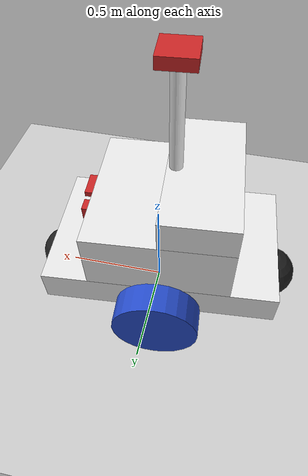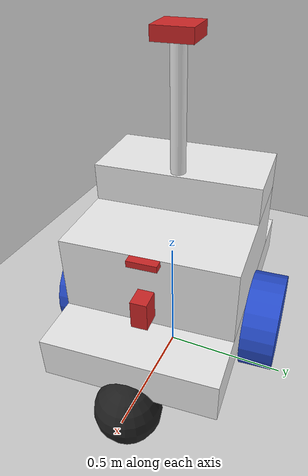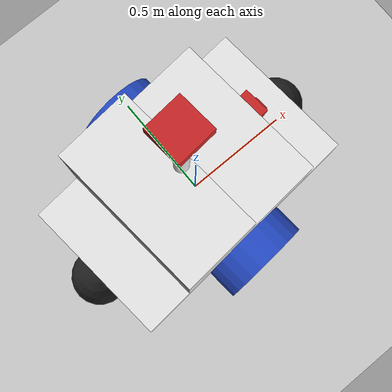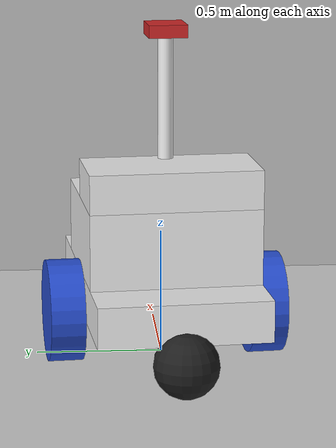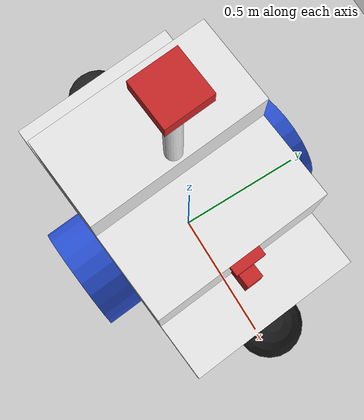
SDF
<sdf version="1.7">
 <world name="default">
  <light name="sun" type="directional">
   <pose>0 0 10 0 -0 0</pose>
   <diffuse>0.8 0.8 0.8 1</diffuse>
   <specular>0.2 0.2 0.2 1</specular>
   <attenuation>
    <range>1000</range>
    <constant>0.9</constant>
    <linear>0.01</linear>
    <quadratic>0.001</quadratic>
   </attenuation>
   <direction>-0.5 0.1 -0.9</direction>
   <spot><inner_angle>0</inner_angle><outer_angle>0</outer_angle><falloff>0</falloff></spot>
  </light>
  <model name="ground_plane">
   <static>1</static>
   <link name="link">
    <collision name="collision">
     <geometry><plane><normal>0 0 1</normal><size>100 100</size></plane></geometry>
     <surface>
      <contact><collide_bitmask>65535</collide_bitmask></contact>
      <friction><ode><mu>100</mu><mu2>50</mu2></ode></friction>
     </surface>
    </collision>
    <visual name="visual">
     <cast_shadows>0</cast_shadows>
     <geometry><plane><normal>0 0 1</normal><size>100 100</size></plane></geometry>
     <material>
      <script><uri>file://media/materials/scripts/gazebo.material</uri><name>Gazebo/Grey</name></script>
     </material>
    </visual>
   </link>
  </model>
  <gravity>0 0 -9.8</gravity>
  <magnetic_field>6e-06 2.3e-05 -4.2e-05</magnetic_field>
  <atmosphere type="adiabatic"/>
  <physics type="ode">
   <max_step_size>0.001</max_step_size>
   <real_time_factor>1</real_time_factor>
   <real_time_update_rate>1000</real_time_update_rate>
  </physics>
  <scene><ambient>0.4 0.4 0.4 1</ambient><background>0.7 0.7 0.7 1</background><shadows>1</shadows></scene>
  <spherical_coordinates>
   <surface_model>EARTH_WGS84</surface_model>
   <latitude_deg>0</latitude_deg>
   <longitude_deg>0</longitude_deg>
   <elevation>0</elevation>
   <heading_deg>0</heading_deg>
  </spherical_coordinates>
  <audio><device>default</device></audio>
  <model name="my_bot">
   <link name="base_link">
    <inertial>
     <pose>-0.02405 0 0.187431 0 -0 0</pose>
     <mass>51.42</mass>
     <inertia>
      <ixx>3.938</ixx>
      <ixy>0</ixy>
      <ixz>0.461429</ixz>
      <iyy>7.18423</iyy>
      <iyz>0</iyz>
      <izz>6.68355</izz>
     </inertia>
    </inertial>
    <collision name="base_link_fixed_joint_lump__chassis_collision">
     <pose>0 0 0.08135 0 -0 0</pose>
     <geometry><box><size>1.099 0.6689 0.1627</size></box></geometry>
    </collision>
    <collision name="base_link_fixed_joint_lump__bottom_frame_collision_1">
     <pose>0 0 0.31195 0 -0 0</pose>
     <geometry><box><size>0.6596 0.6689 0.2985</size></box></geometry>
    </collision>
    <collision name="base_link_fixed_joint_lump__camera_link_collision_2">
     <pose>0.34735 0 0.4485 0 -0 0</pose>
     <geometry><box><size>0.0351 0.1143 0.0254</size></box></geometry>
    </collision>
    <collision name="base_link_fixed_joint_lump__imu_link_collision_3">
     <pose>0.3282 0 0.4485 0 -0 0</pose>
     <geometry><box><size>0.01 0.01 0.007</size></box></geometry>
    </collision>
    <collision name="base_link_fixed_joint_lump__laser_frame_collision_4">
     <pose>0.369575 0 0.25915 0 -0 0</pose>
     <geometry><box><size>0.07955 0.0635 0.1143</size></box></geometry>
    </collision>
    <collision name="base_link_fixed_joint_lump__top_frame_collision_5">
     <pose>-0.1647 0 0.5374 0 -0 0</pose>
     <geometry><box><size>0.3302 0.6689 0.1524</size></box></geometry>
    </collision>
    <collision name="base_link_fixed_joint_lump__gps_holder_link_collision_6">
     <pose>-0.0398 0 0.8661 0 -0 0</pose>
     <geometry><cylinder><length>0.505</length><radius>0.03</radius></cylinder></geometry>
    </collision>
    <collision name="base_link_fixed_joint_lump__gps_link_collision_7">
     <pose>-0.0398 0 1.1186 0 -0 0</pose>
     <geometry><box><size>0.15 0.15 0.05</size></box></geometry>
    </collision>
    <collision name="base_link_fixed_joint_lump__front_caster_wheel_collision_8">
     <pose>0.5495 0 -0.075 0 -0 0</pose>
     <geometry><sphere><radius>0.127</radius></sphere></geometry>
     <surface><friction><ode><mu>0.001</mu><mu2>0.001</mu2></ode></friction></surface>
    </collision>
    <collision name="base_link_fixed_joint_lump__rear_caster_wheel_collision_9">
     <pose>-0.5495 0 -0.075 0 -0 0</pose>
     <geometry><sphere><radius>0.127</radius></sphere></geometry>
     <surface><friction><ode><mu>0.001</mu><mu2>0.001</mu2></ode></friction></surface>
    </collision>
    <visual name="base_link_fixed_joint_lump__chassis_visual">
     <pose>0 0 0.08135 0 -0 0</pose>
     <geometry><box><size>1.099 0.6689 0.1627</size></box></geometry>
     <material>
      <script><name>Gazebo/White</name><uri>file://media/materials/scripts/gazebo.material</uri></script>
     </material>
    </visual>
    <visual name="base_link_fixed_joint_lump__bottom_frame_visual_1">
     <pose>0 0 0.31195 0 -0 0</pose>
     <geometry><box><size>0.6596 0.6689 0.2985</size></box></geometry>
     <material>
      <script><name>Gazebo/White</name><uri>file://media/materials/scripts/gazebo.material</uri></script>
     </material>
    </visual>
    <visual name="base_link_fixed_joint_lump__camera_link_visual_2">
     <pose>0.34735 0 0.4485 0 -0 0</pose>
     <geometry><box><size>0.0351 0.1143 0.0254</size></box></geometry>
     <material>
      <script><name>Gazebo/Red</name><uri>file://media/materials/scripts/gazebo.material</uri></script>
     </material>
    </visual>
    <visual name="base_link_fixed_joint_lump__imu_link_visual_3">
     <pose>0.3282 0 0.4485 0 -0 0</pose>
     <geometry><box><size>0.01 0.01 0.007</size></box></geometry>
     <material>
      <script><name>Gazebo/Red</name><uri>file://media/materials/scripts/gazebo.material</uri></script>
     </material>
    </visual>
    <visual name="base_link_fixed_joint_lump__laser_frame_visual_4">
     <pose>0.369575 0 0.25915 0 -0 0</pose>
     <geometry><box><size>0.07955 0.0635 0.1143</size></box></geometry>
     <material>
      <script><name>Gazebo/Red</name><uri>file://media/materials/scripts/gazebo.material</uri></script>
     </material>
    </visual>
    <visual name="base_link_fixed_joint_lump__top_frame_visual_5">
     <pose>-0.1647 0 0.5374 0 -0 0</pose>
     <geometry><box><size>0.3302 0.6689 0.1524</size></box></geometry>
     <material>
      <script><name>Gazebo/White</name><uri>file://media/materials/scripts/gazebo.material</uri></script>
     </material>
    </visual>
    <visual name="base_link_fixed_joint_lump__gps_holder_link_visual_6">
     <pose>-0.0398 0 0.8661 0 -0 0</pose>
     <geometry><cylinder><length>0.505</length><radius>0.03</radius></cylinder></geometry>
     <material>
      <script><name>Gazebo/White</name><uri>file://media/materials/scripts/gazebo.material</uri></script>
     </material>
    </visual>
    <visual name="base_link_fixed_joint_lump__gps_link_visual_7">
     <pose>-0.0398 0 1.1186 0 -0 0</pose>
     <geometry><box><size>0.15 0.15 0.05</size></box></geometry>
     <material>
      <script><name>Gazebo/Red</name><uri>file://media/materials/scripts/gazebo.material</uri></script>
     </material>
    </visual>
    <visual name="base_link_fixed_joint_lump__front_caster_wheel_visual_8">
     <pose>0.5495 0 -0.075 0 -0 0</pose>
     <geometry><sphere><radius>0.127</radius></sphere></geometry>
     <material>
      <script><name>Gazebo/Black</name><uri>file://media/materials/scripts/gazebo.material</uri></script>
     </material>
    </visual>
    <visual name="base_link_fixed_joint_lump__rear_caster_wheel_visual_9">
     <pose>-0.5495 0 -0.075 0 -0 0</pose>
     <geometry><sphere><radius>0.127</radius></sphere></geometry>
     <material>
      <script><name>Gazebo/Black</name><uri>file://media/materials/scripts/gazebo.material</uri></script>
     </material>
    </visual>
    <sensor name="camera" type="camera">
     <visualize>1</visualize>
     <update_rate>10</update_rate>
     <camera>
      <horizontal_fov>1.089</horizontal_fov>
      <image><format>R8G8B8</format><width>640</width><height>480</height></image>
      <clip><near>0.05</near><far>8</far></clip>
     </camera>
     <plugin name="camera_controller" filename="libgazebo_ros_camera.so">
      <frame_name>camera_link_optical</frame_name>
     </plugin>
     <pose>0.3649 0 0.4485 0 -0 0</pose>
    </sensor>
    <sensor name="laser" type="ray">
     <visualize>0</visualize>
     <update_rate>10</update_rate>
     <ray>
      <scan>
       <horizontal>
        <samples>360</samples>
        <min_angle>-1.5708</min_angle>
        <max_angle>1.5708</max_angle>
        <resolution>1</resolution>
       </horizontal>
       <vertical><samples>1</samples><min_angle>0</min_angle><max_angle>0</max_angle></vertical>
      </scan>
      <range><min>0.3</min><max>12</max></range>
     </ray>
     <plugin name="laser_controller" filename="libgazebo_ros_ray_sensor.so">
      <ros><remapping>~/out:=/scan</remapping></ros>
      <output_type>sensor_msgs/LaserScan</output_type>
      <frameName>laser_frame</frameName>
     </plugin>
     <pose>0.40935 0 0.2963 0 -0 0</pose>
    </sensor>
   </link>
   <joint name="left_wheel_joint" type="revolute">
    <pose relative_to="base_link">0 0.33445 0 -1.5708 0 0</pose>
    <parent>base_link</parent>
    <child>left_wheel</child>
    <axis>
     <xyz>0 0 1</xyz>
     <limit><lower>-1e+16</lower><upper>1e+16</upper></limit>
     <dynamics><spring_reference>0</spring_reference><spring_stiffness>0</spring_stiffness></dynamics>
    </axis>
   </joint>
   <link name="left_wheel">
    <pose relative_to="left_wheel_joint">0 0 0 0 -0 0</pose>
    <inertial>
     <pose>0 0 0.0681 0 -0 0</pose>
     <mass>6.41</mass>
     <inertia>
      <ixx>0.0752974</ixx>
      <ixy>0</ixy>
      <ixz>0</ixz>
      <iyy>0.0752974</iyy>
      <iyz>0</iyz>
      <izz>0.130777</izz>
     </inertia>
    </inertial>
    <collision name="left_wheel_collision">
     <pose>0 0 0.0681 0 -0 0</pose>
     <geometry><sphere><radius>0.202</radius></sphere></geometry>
    </collision>
    <visual name="left_wheel_visual">
     <pose>0 0 0.0681 0 -0 0</pose>
     <geometry><cylinder><length>0.1362</length><radius>0.202</radius></cylinder></geometry>
     <material>
      <script><name>Gazebo/Blue</name><uri>file://media/materials/scripts/gazebo.material</uri></script>
     </material>
    </visual>
   </link>
   <joint name="right_wheel_joint" type="revolute">
    <pose relative_to="base_link">0 -0.33445 0 1.5708 -0 0</pose>
    <parent>base_link</parent>
    <child>right_wheel</child>
    <axis>
     <xyz>0 0 -1</xyz>
     <limit><lower>-1e+16</lower><upper>1e+16</upper></limit>
     <dynamics><spring_reference>0</spring_reference><spring_stiffness>0</spring_stiffness></dynamics>
    </axis>
   </joint>
   <link name="right_wheel">
    <pose relative_to="right_wheel_joint">0 0 0 0 -0 0</pose>
    <inertial>
     <pose>0 0 0.0681 0 -0 0</pose>
     <mass>6.41</mass>
     <inertia>
      <ixx>0.0752974</ixx>
      <ixy>0</ixy>
      <ixz>0</ixz>
      <iyy>0.0752974</iyy>
      <iyz>0</iyz>
      <izz>0.130777</izz>
     </inertia>
    </inertial>
    <collision name="right_wheel_collision">
     <pose>0 0 0.0681 0 -0 0</pose>
     <geometry><sphere><radius>0.202</radius></sphere></geometry>
    </collision>
    <visual name="right_wheel_visual">
     <pose>0 0 0.0681 0 -0 0</pose>
     <geometry><cylinder><length>0.1362</length><radius>0.202</radius></cylinder></geometry>
     <material>
      <script><name>Gazebo/Blue</name><uri>file://media/materials/scripts/gazebo.material</uri></script>
     </material>
    </visual>
   </link>
   <static>0</static>
   <plugin name="gazebo_ros2_control" filename="libgazebo_ros2_control.so">
    <parameters>/home/kevy/dev_ws/install/dynabot/share/dynabot/config/my_controllers.yaml</parameters>
    <parameters>/home/kevy/dev_ws/install/dynabot/share/dynabot/config/gaz_ros2_ctrl_use_sim.yaml</parameters>
   </plugin>
   <pose>-0.040946 -0.007373 0.201998 6e-06 3e-06 0.086738</pose>
  </model>
 </world>
</sdf>
